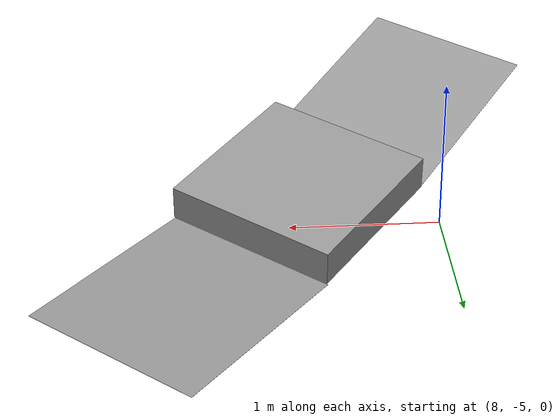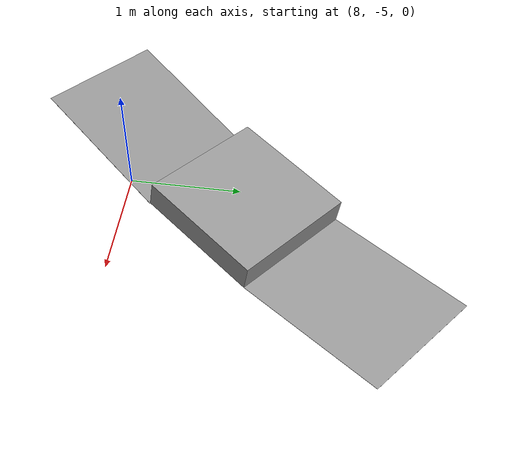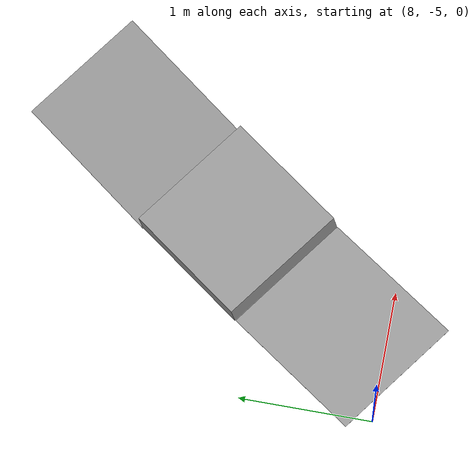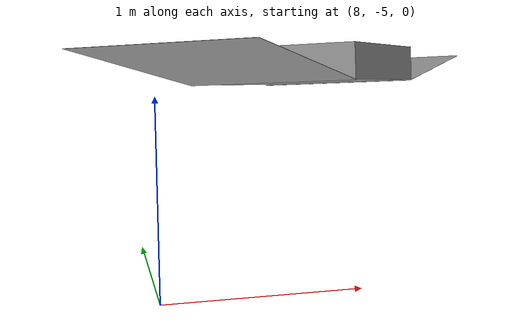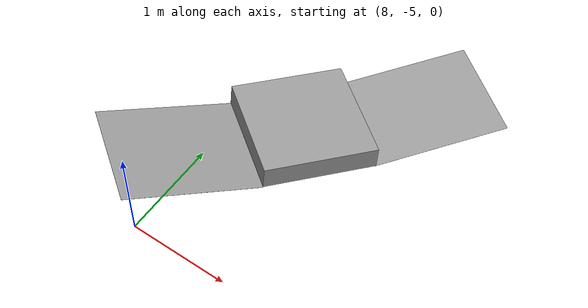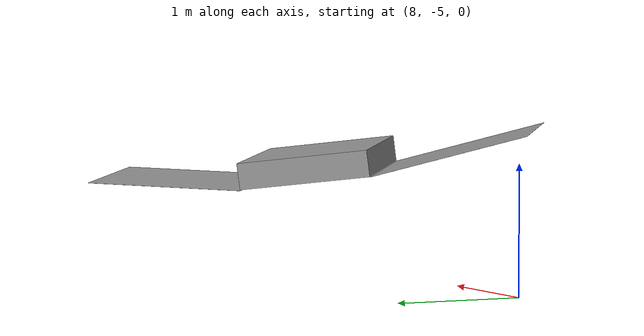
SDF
<?xml version='1.0'?>
<sdf version='1.7'>
  <model name='ramp'>
    <link name='link_2'>
      <inertial>
        <mass>0.00153106</mass>
        <inertia>
          <ixx>0.00012759</ixx>
          <ixy>0</ixy>
          <ixz>0</ixz>
          <iyy>0.00018467</iyy>
          <iyz>0</iyz>
          <izz>0.00031226</izz>
        </inertia>
        <pose>0 0 0 0 -0 0</pose>
      </inertial>
      <pose>9.66661 -2.9455 0.858537 3.05798 0.109437 0.918467</pose>
      <gravity>1</gravity>
      <self_collide>0</self_collide>
      <kinematic>0</kinematic>
      <enable_wind>0</enable_wind>
      <visual name='visual'>
        <pose>0 0 0 0 0.1489 0</pose>
        <geometry>
          <box>
            <size>1.20307 1 0.001125</size>
          </box>
        </geometry>
        <material>
          <lighting>1</lighting>
          <script>
            <uri>file://media/materials/scripts/gazebo.material</uri>
            <name>Gazebo/Grey</name>
          </script>
          <shader type='pixel'>
            <normal_map>__default__</normal_map>
          </shader>
          <ambient>0.3 0.3 0.3 1</ambient>
          <diffuse>0.7 0.7 0.7 1</diffuse>
          <specular>0.01 0.01 0.01 1</specular>
          <emissive>0 0 0 1</emissive>
        </material>
        <transparency>0</transparency>
        <cast_shadows>1</cast_shadows>
      </visual>
      <collision name='collision'>
        <laser_retro>0</laser_retro>
        <max_contacts>10</max_contacts>
        <pose>0 0 0 0 0.1489 0</pose>
        <geometry>
          <box>
            <size>1.20307 1 0.001125</size>
          </box>
        </geometry>
        <surface>
          <friction>
            <ode>
              <mu>1</mu>
              <mu2>1</mu2>
              <fdir1>0 0 0</fdir1>
              <slip1>0</slip1>
              <slip2>0</slip2>
            </ode>
            <torsional>
              <coefficient>1</coefficient>
              <patch_radius>0</patch_radius>
              <surface_radius>0</surface_radius>
              <use_patch_radius>1</use_patch_radius>
              <ode>
                <slip>0</slip>
              </ode>
            </torsional>
          </friction>
          <bounce>
            <restitution_coefficient>0</restitution_coefficient>
            <threshold>1e+06</threshold>
          </bounce>
          <contact>
            <collide_without_contact>0</collide_without_contact>
            <collide_without_contact_bitmask>1</collide_without_contact_bitmask>
            <collide_bitmask>1</collide_bitmask>
            <ode>
              <soft_cfm>0</soft_cfm>
              <soft_erp>0.2</soft_erp>
              <kp>1e+13</kp>
              <kd>1</kd>
              <max_vel>0.01</max_vel>
              <min_depth>0</min_depth>
            </ode>
            <bullet>
              <split_impulse>1</split_impulse>
              <split_impulse_penetration_threshold>-0.01</split_impulse_penetration_threshold>
              <soft_cfm>0</soft_cfm>
              <soft_erp>0.2</soft_erp>
              <kp>1e+13</kp>
              <kd>1</kd>
            </bullet>
          </contact>
        </surface>
      </collision>
    </link>
    <link name='link_2_clone'>
      <inertial>
        <mass>0.0011788</mass>
        <inertia>
          <ixx>9.82334e-05</ixx>
          <ixy>0</ixy>
          <ixz>0</ixz>
          <iyy>0.000142181</iyy>
          <iyz>0</iyz>
          <izz>0.000240414</izz>
        </inertia>
        <pose>0 0 0 0 -0 0</pose>
      </inertial>
      <pose>8.35565 -4.67893 1.10239 -3.05839 -0.109743 -2.21939</pose>
      <gravity>1</gravity>
      <self_collide>0</self_collide>
      <kinematic>0</kinematic>
      <enable_wind>0</enable_wind>
      <visual name='visual'>
        <pose>0 0 0 0 0.1489 0</pose>
        <geometry>
          <box>
            <size>1.20307 1 0.001127</size>
          </box>
        </geometry>
        <material>
          <lighting>1</lighting>
          <script>
            <uri>file://media/materials/scripts/gazebo.material</uri>
            <name>Gazebo/Grey</name>
          </script>
          <shader type='pixel'>
            <normal_map>__default__</normal_map>
          </shader>
          <ambient>0.3 0.3 0.3 1</ambient>
          <diffuse>0.7 0.7 0.7 1</diffuse>
          <specular>0.01 0.01 0.01 1</specular>
          <emissive>0 0 0 1</emissive>
        </material>
        <transparency>0</transparency>
        <cast_shadows>1</cast_shadows>
      </visual>
      <collision name='collision'>
        <laser_retro>0</laser_retro>
        <max_contacts>10</max_contacts>
        <pose>0 0 0 0 0.1489 0</pose>
        <geometry>
          <box>
            <size>1.20307 1 0.001127</size>
          </box>
        </geometry>
        <surface>
          <friction>
            <ode>
              <mu>1</mu>
              <mu2>1</mu2>
              <fdir1>0 0 0</fdir1>
              <slip1>0</slip1>
              <slip2>0</slip2>
            </ode>
            <torsional>
              <coefficient>1</coefficient>
              <patch_radius>0</patch_radius>
              <surface_radius>0</surface_radius>
              <use_patch_radius>1</use_patch_radius>
              <ode>
                <slip>0</slip>
              </ode>
            </torsional>
          </friction>
          <bounce>
            <restitution_coefficient>0</restitution_coefficient>
            <threshold>1e+06</threshold>
          </bounce>
          <contact>
            <collide_without_contact>0</collide_without_contact>
            <collide_without_contact_bitmask>1</collide_without_contact_bitmask>
            <collide_bitmask>1</collide_bitmask>
            <ode>
              <soft_cfm>0</soft_cfm>
              <soft_erp>0.2</soft_erp>
              <kp>1e+13</kp>
              <kd>1</kd>
              <max_vel>0.01</max_vel>
              <min_depth>0</min_depth>
            </ode>
            <bullet>
              <split_impulse>1</split_impulse>
              <split_impulse_penetration_threshold>-0.01</split_impulse_penetration_threshold>
              <soft_cfm>0</soft_cfm>
              <soft_erp>0.2</soft_erp>
              <kp>1e+13</kp>
              <kd>1</kd>
            </bullet>
          </contact>
        </surface>
      </collision>
    </link>
    <link name='link_3'>
      <inertial>
        <mass>1.13204</mass>
        <inertia>
          <ixx>0.215233</ixx>
          <ixy>0</ixy>
          <ixz>0</ixz>
          <iyy>0.215233</iyy>
          <iyz>0</iyz>
          <izz>0.188674</izz>
        </inertia>
        <pose>0 0 0 0 -0 0</pose>
      </inertial>
      <pose>9.01105 -3.80807 0.995326 3.05798 0.109437 0.918467</pose>
      <gravity>1</gravity>
      <self_collide>0</self_collide>
      <kinematic>0</kinematic>
      <enable_wind>0</enable_wind>
      <visual name='visual'>
        <pose>0 0 0 0 -0 0</pose>
        <geometry>
          <box>
            <size>1 1 0.2</size>
          </box>
        </geometry>
        <material>
          <lighting>1</lighting>
          <script>
            <uri>file://media/materials/scripts/gazebo.material</uri>
            <name>Gazebo/Grey</name>
          </script>
          <shader type='pixel'>
            <normal_map>__default__</normal_map>
          </shader>
          <ambient>0.3 0.3 0.3 1</ambient>
          <diffuse>0.7 0.7 0.7 1</diffuse>
          <specular>0.01 0.01 0.01 1</specular>
          <emissive>0 0 0 1</emissive>
        </material>
        <transparency>0</transparency>
        <cast_shadows>1</cast_shadows>
      </visual>
      <collision name='collision'>
        <laser_retro>0</laser_retro>
        <max_contacts>10</max_contacts>
        <pose>0 0 0 0 -0 0</pose>
        <geometry>
          <box>
            <size>1 1 0.2</size>
          </box>
        </geometry>
        <surface>
          <friction>
            <ode>
              <mu>1</mu>
              <mu2>1</mu2>
              <fdir1>0 0 0</fdir1>
              <slip1>0</slip1>
              <slip2>0</slip2>
            </ode>
            <torsional>
              <coefficient>1</coefficient>
              <patch_radius>0</patch_radius>
              <surface_radius>0</surface_radius>
              <use_patch_radius>1</use_patch_radius>
              <ode>
                <slip>0</slip>
              </ode>
            </torsional>
          </friction>
          <bounce>
            <restitution_coefficient>0</restitution_coefficient>
            <threshold>1e+06</threshold>
          </bounce>
          <contact>
            <collide_without_contact>0</collide_without_contact>
            <collide_without_contact_bitmask>1</collide_without_contact_bitmask>
            <collide_bitmask>1</collide_bitmask>
            <ode>
              <soft_cfm>0</soft_cfm>
              <soft_erp>0.2</soft_erp>
              <kp>1e+13</kp>
              <kd>1</kd>
              <max_vel>0.01</max_vel>
              <min_depth>0</min_depth>
            </ode>
            <bullet>
              <split_impulse>1</split_impulse>
              <split_impulse_penetration_threshold>-0.01</split_impulse_penetration_threshold>
              <soft_cfm>0</soft_cfm>
              <soft_erp>0.2</soft_erp>
              <kp>1e+13</kp>
              <kd>1</kd>
            </bullet>
          </contact>
        </surface>
      </collision>
    </link>
    <joint name='link_3_JOINT_3' type='fixed'>
      <parent>link_3</parent>
      <child>link_2</child>
      <pose>0 0 0 0 -0 0</pose>
      <physics>
        <ode>
          <limit>
            <cfm>0</cfm>
            <erp>0.2</erp>
          </limit>
          <suspension>
            <cfm>0</cfm>
            <erp>0.2</erp>
          </suspension>
        </ode>
      </physics>
    </joint>
    <joint name='link_3_JOINT_4' type='fixed'>
      <parent>link_3</parent>
      <child>link_2_clone</child>
      <pose>0 0 0 0 -0 0</pose>
      <physics>
        <ode>
          <limit>
            <cfm>0</cfm>
            <erp>0.2</erp>
          </limit>
          <suspension>
            <cfm>0</cfm>
            <erp>0.2</erp>
          </suspension>
        </ode>
      </physics>
    </joint>
    <static>0</static>
    <allow_auto_disable>1</allow_auto_disable>
  </model>
</sdf>
